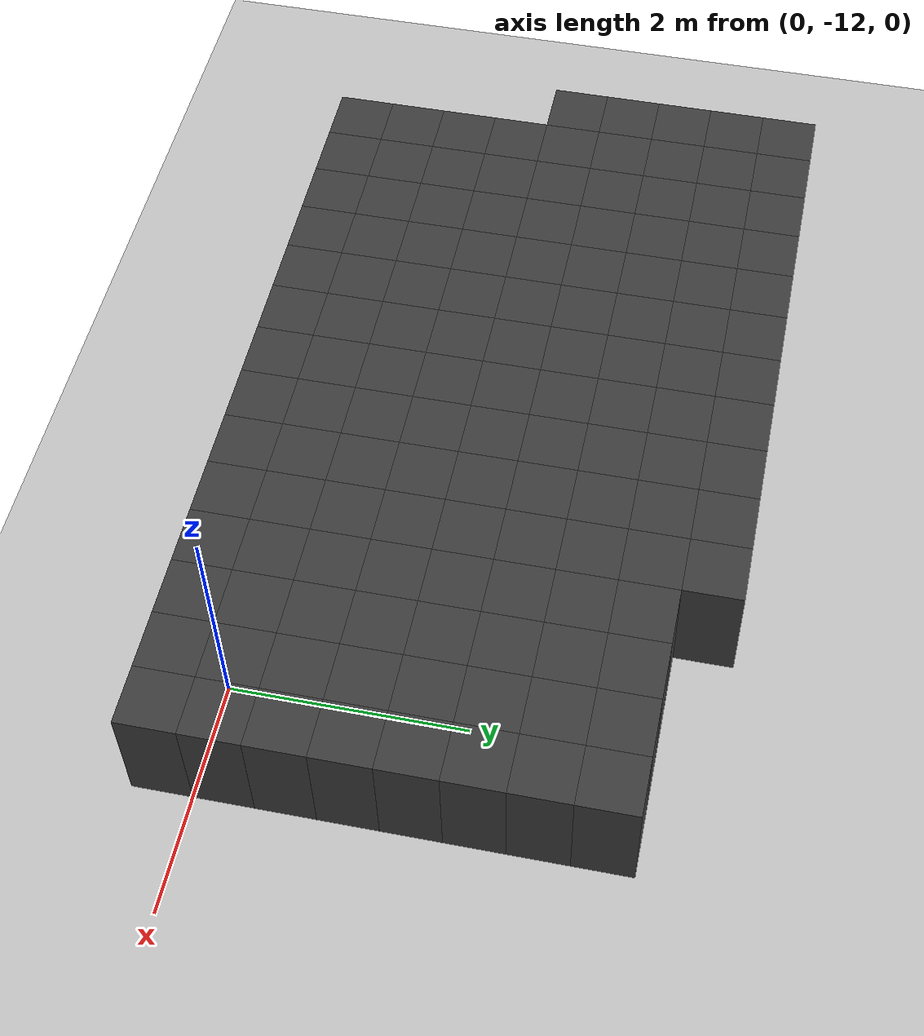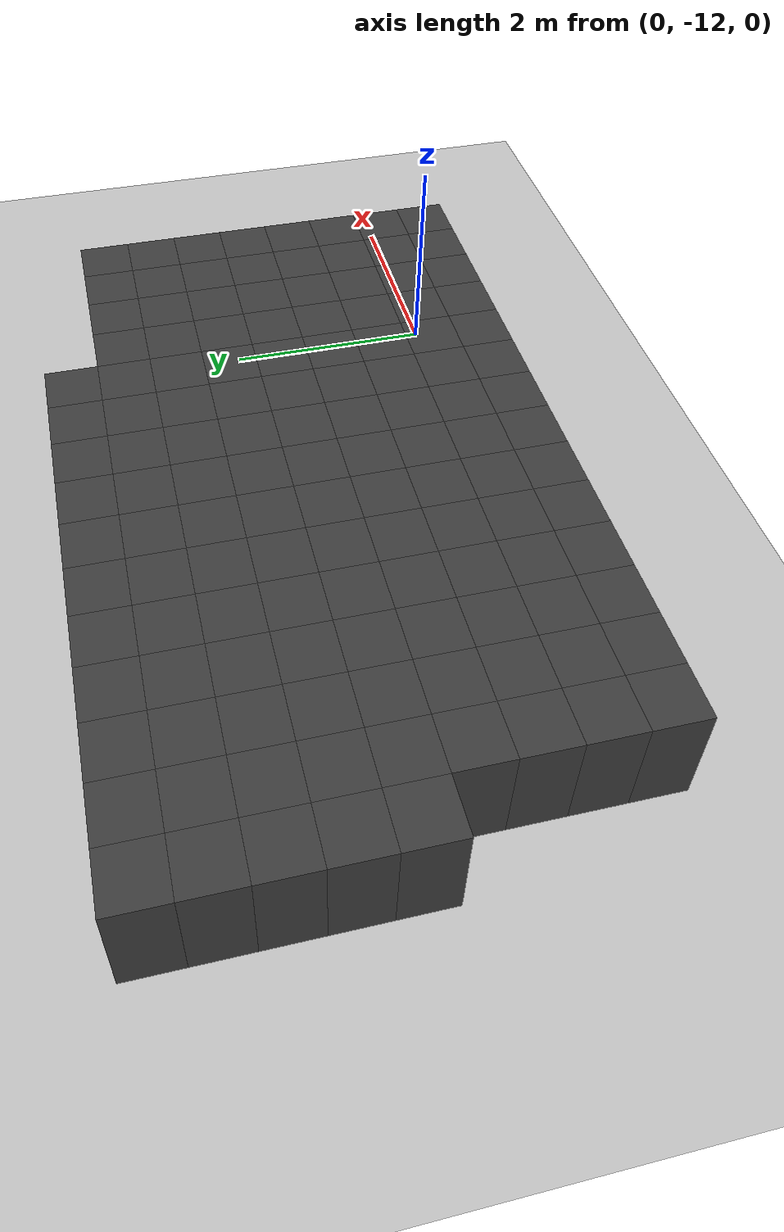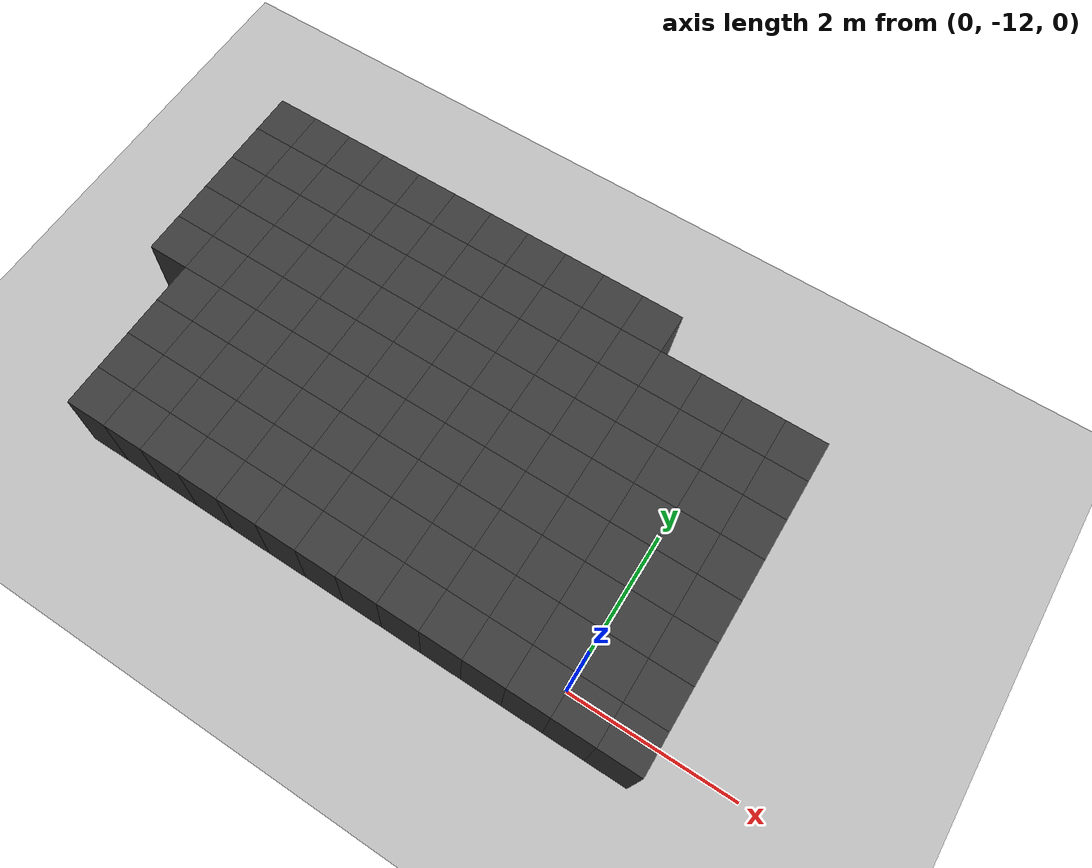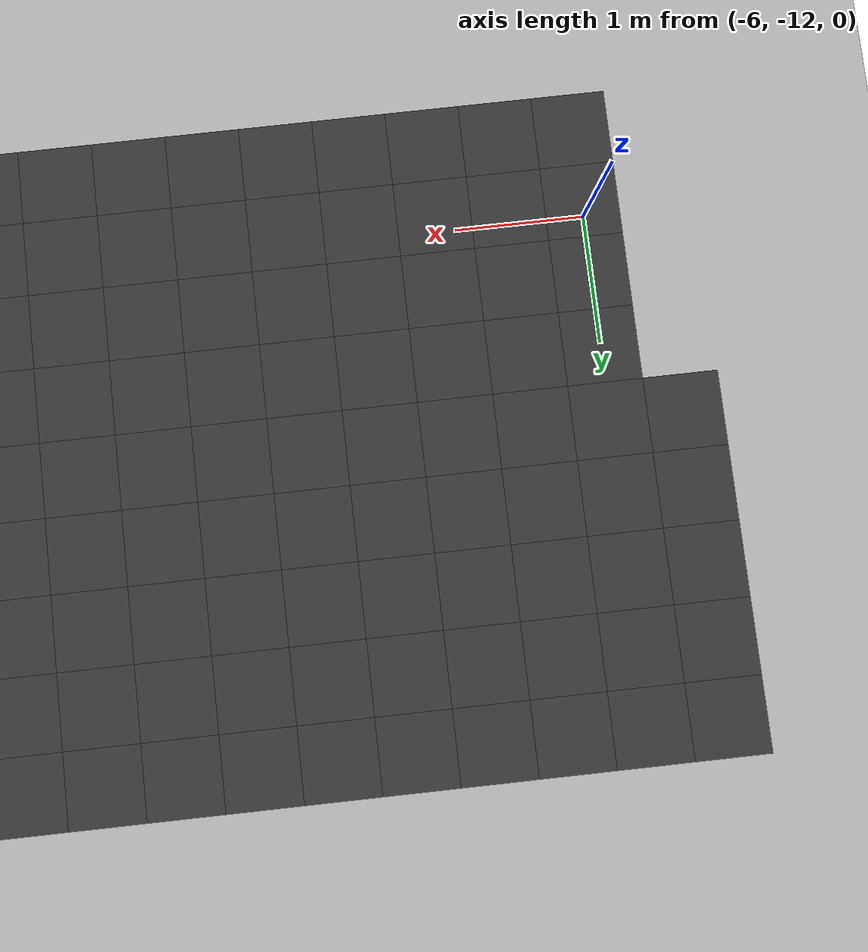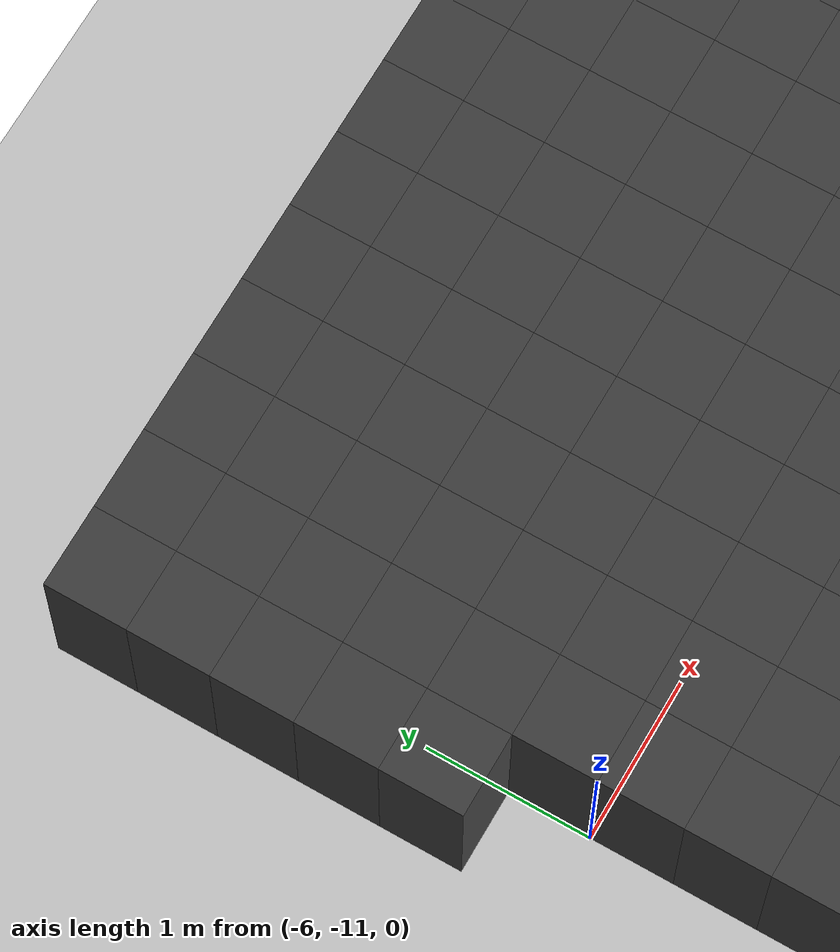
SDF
<sdf version="1.7">
 <world name="map_12356">
  <model name="ground_plane">
   <static>true</static>
   <link name="link">
    <collision name="collision">
     <geometry><plane><normal>0 0 1</normal><size>200 200</size></plane></geometry>
    </collision>
    <visual name="visual">
     <geometry><plane><normal>0 0 1</normal><size>200 200</size></plane></geometry>
     <material><ambient>0.8 0.8 0.8 1</ambient><diffuse>0.8 0.8 0.8 1</diffuse></material>
    </visual>
   </link>
  </model>
  <model name="maze_environment">
   <static>true</static>
   <link name="wall_1620">
    <pose>-6.250 -8.250 0.500 0 0 0</pose>
    <collision name="col"><geometry><box><size>0.5 0.5 1.0</size></box></geometry></collision>
    <visual name="vis">
     <geometry><box><size>0.5 0.5 1.0</size></box></geometry>
     <material><ambient>0.15 0.15 0.15 1</ambient><diffuse>0.25 0.25 0.25 1</diffuse></material>
    </visual>
   </link>
   <link name="wall_1621">
    <pose>-5.750 -8.250 0.500 0 0 0</pose>
    <collision name="col"><geometry><box><size>0.5 0.5 1.0</size></box></geometry></collision>
    <visual name="vis">
     <geometry><box><size>0.5 0.5 1.0</size></box></geometry>
     <material><ambient>0.15 0.15 0.15 1</ambient><diffuse>0.25 0.25 0.25 1</diffuse></material>
    </visual>
   </link>
   <link name="wall_1622">
    <pose>-5.250 -8.250 0.500 0 0 0</pose>
    <collision name="col"><geometry><box><size>0.5 0.5 1.0</size></box></geometry></collision>
    <visual name="vis">
     <geometry><box><size>0.5 0.5 1.0</size></box></geometry>
     <material><ambient>0.15 0.15 0.15 1</ambient><diffuse>0.25 0.25 0.25 1</diffuse></material>
    </visual>
   </link>
   <link name="wall_1623">
    <pose>-4.750 -8.250 0.500 0 0 0</pose>
    <collision name="col"><geometry><box><size>0.5 0.5 1.0</size></box></geometry></collision>
    <visual name="vis">
     <geometry><box><size>0.5 0.5 1.0</size></box></geometry>
     <material><ambient>0.15 0.15 0.15 1</ambient><diffuse>0.25 0.25 0.25 1</diffuse></material>
    </visual>
   </link>
   <link name="wall_1624">
    <pose>-4.250 -8.250 0.500 0 0 0</pose>
    <collision name="col"><geometry><box><size>0.5 0.5 1.0</size></box></geometry></collision>
    <visual name="vis">
     <geometry><box><size>0.5 0.5 1.0</size></box></geometry>
     <material><ambient>0.15 0.15 0.15 1</ambient><diffuse>0.25 0.25 0.25 1</diffuse></material>
    </visual>
   </link>
   <link name="wall_1625">
    <pose>-3.750 -8.250 0.500 0 0 0</pose>
    <collision name="col"><geometry><box><size>0.5 0.5 1.0</size></box></geometry></collision>
    <visual name="vis">
     <geometry><box><size>0.5 0.5 1.0</size></box></geometry>
     <material><ambient>0.15 0.15 0.15 1</ambient><diffuse>0.25 0.25 0.25 1</diffuse></material>
    </visual>
   </link>
   <link name="wall_1626">
    <pose>-3.250 -8.250 0.500 0 0 0</pose>
    <collision name="col"><geometry><box><size>0.5 0.5 1.0</size></box></geometry></collision>
    <visual name="vis">
     <geometry><box><size>0.5 0.5 1.0</size></box></geometry>
     <material><ambient>0.15 0.15 0.15 1</ambient><diffuse>0.25 0.25 0.25 1</diffuse></material>
    </visual>
   </link>
   <link name="wall_1627">
    <pose>-2.750 -8.250 0.500 0 0 0</pose>
    <collision name="col"><geometry><box><size>0.5 0.5 1.0</size></box></geometry></collision>
    <visual name="vis">
     <geometry><box><size>0.5 0.5 1.0</size></box></geometry>
     <material><ambient>0.15 0.15 0.15 1</ambient><diffuse>0.25 0.25 0.25 1</diffuse></material>
    </visual>
   </link>
   <link name="wall_1628">
    <pose>-2.250 -8.250 0.500 0 0 0</pose>
    <collision name="col"><geometry><box><size>0.5 0.5 1.0</size></box></geometry></collision>
    <visual name="vis">
     <geometry><box><size>0.5 0.5 1.0</size></box></geometry>
     <material><ambient>0.15 0.15 0.15 1</ambient><diffuse>0.25 0.25 0.25 1</diffuse></material>
    </visual>
   </link>
   <link name="wall_1629">
    <pose>-1.750 -8.250 0.500 0 0 0</pose>
    <collision name="col"><geometry><box><size>0.5 0.5 1.0</size></box></geometry></collision>
    <visual name="vis">
     <geometry><box><size>0.5 0.5 1.0</size></box></geometry>
     <material><ambient>0.15 0.15 0.15 1</ambient><diffuse>0.25 0.25 0.25 1</diffuse></material>
    </visual>
   </link>
   <link name="wall_1630">
    <pose>-1.250 -8.250 0.500 0 0 0</pose>
    <collision name="col"><geometry><box><size>0.5 0.5 1.0</size></box></geometry></collision>
    <visual name="vis">
     <geometry><box><size>0.5 0.5 1.0</size></box></geometry>
     <material><ambient>0.15 0.15 0.15 1</ambient><diffuse>0.25 0.25 0.25 1</diffuse></material>
    </visual>
   </link>
   <link name="wall_1669">
    <pose>-6.250 -8.750 0.500 0 0 0</pose>
    <collision name="col"><geometry><box><size>0.5 0.5 1.0</size></box></geometry></collision>
    <visual name="vis">
     <geometry><box><size>0.5 0.5 1.0</size></box></geometry>
     <material><ambient>0.15 0.15 0.15 1</ambient><diffuse>0.25 0.25 0.25 1</diffuse></material>
    </visual>
   </link>
   <link name="wall_1670">
    <pose>-5.750 -8.750 0.500 0 0 0</pose>
    <collision name="col"><geometry><box><size>0.5 0.5 1.0</size></box></geometry></collision>
    <visual name="vis">
     <geometry><box><size>0.5 0.5 1.0</size></box></geometry>
     <material><ambient>0.15 0.15 0.15 1</ambient><diffuse>0.25 0.25 0.25 1</diffuse></material>
    </visual>
   </link>
   <link name="wall_1671">
    <pose>-5.250 -8.750 0.500 0 0 0</pose>
    <collision name="col"><geometry><box><size>0.5 0.5 1.0</size></box></geometry></collision>
    <visual name="vis">
     <geometry><box><size>0.5 0.5 1.0</size></box></geometry>
     <material><ambient>0.15 0.15 0.15 1</ambient><diffuse>0.25 0.25 0.25 1</diffuse></material>
    </visual>
   </link>
   <link name="wall_1672">
    <pose>-4.750 -8.750 0.500 0 0 0</pose>
    <collision name="col"><geometry><box><size>0.5 0.5 1.0</size></box></geometry></collision>
    <visual name="vis">
     <geometry><box><size>0.5 0.5 1.0</size></box></geometry>
     <material><ambient>0.15 0.15 0.15 1</ambient><diffuse>0.25 0.25 0.25 1</diffuse></material>
    </visual>
   </link>
   <link name="wall_1673">
    <pose>-4.250 -8.750 0.500 0 0 0</pose>
    <collision name="col"><geometry><box><size>0.5 0.5 1.0</size></box></geometry></collision>
    <visual name="vis">
     <geometry><box><size>0.5 0.5 1.0</size></box></geometry>
     <material><ambient>0.15 0.15 0.15 1</ambient><diffuse>0.25 0.25 0.25 1</diffuse></material>
    </visual>
   </link>
   <link name="wall_1674">
    <pose>-3.750 -8.750 0.500 0 0 0</pose>
    <collision name="col"><geometry><box><size>0.5 0.5 1.0</size></box></geometry></collision>
    <visual name="vis">
     <geometry><box><size>0.5 0.5 1.0</size></box></geometry>
     <material><ambient>0.15 0.15 0.15 1</ambient><diffuse>0.25 0.25 0.25 1</diffuse></material>
    </visual>
   </link>
   <link name="wall_1675">
    <pose>-3.250 -8.750 0.500 0 0 0</pose>
    <collision name="col"><geometry><box><size>0.5 0.5 1.0</size></box></geometry></collision>
    <visual name="vis">
     <geometry><box><size>0.5 0.5 1.0</size></box></geometry>
     <material><ambient>0.15 0.15 0.15 1</ambient><diffuse>0.25 0.25 0.25 1</diffuse></material>
    </visual>
   </link>
   <link name="wall_1676">
    <pose>-2.750 -8.750 0.500 0 0 0</pose>
    <collision name="col"><geometry><box><size>0.5 0.5 1.0</size></box></geometry></collision>
    <visual name="vis">
     <geometry><box><size>0.5 0.5 1.0</size></box></geometry>
     <material><ambient>0.15 0.15 0.15 1</ambient><diffuse>0.25 0.25 0.25 1</diffuse></material>
    </visual>
   </link>
   <link name="wall_1677">
    <pose>-2.250 -8.750 0.500 0 0 0</pose>
    <collision name="col"><geometry><box><size>0.5 0.5 1.0</size></box></geometry></collision>
    <visual name="vis">
     <geometry><box><size>0.5 0.5 1.0</size></box></geometry>
     <material><ambient>0.15 0.15 0.15 1</ambient><diffuse>0.25 0.25 0.25 1</diffuse></material>
    </visual>
   </link>
   <link name="wall_1678">
    <pose>-1.750 -8.750 0.500 0 0 0</pose>
    <collision name="col"><geometry><box><size>0.5 0.5 1.0</size></box></geometry></collision>
    <visual name="vis">
     <geometry><box><size>0.5 0.5 1.0</size></box></geometry>
     <material><ambient>0.15 0.15 0.15 1</ambient><diffuse>0.25 0.25 0.25 1</diffuse></material>
    </visual>
   </link>
   <link name="wall_1679">
    <pose>-1.250 -8.750 0.500 0 0 0</pose>
    <collision name="col"><geometry><box><size>0.5 0.5 1.0</size></box></geometry></collision>
    <visual name="vis">
     <geometry><box><size>0.5 0.5 1.0</size></box></geometry>
     <material><ambient>0.15 0.15 0.15 1</ambient><diffuse>0.25 0.25 0.25 1</diffuse></material>
    </visual>
   </link>
   <link name="wall_1680">
    <pose>-0.750 -8.750 0.500 0 0 0</pose>
    <collision name="col"><geometry><box><size>0.5 0.5 1.0</size></box></geometry></collision>
    <visual name="vis">
     <geometry><box><size>0.5 0.5 1.0</size></box></geometry>
     <material><ambient>0.15 0.15 0.15 1</ambient><diffuse>0.25 0.25 0.25 1</diffuse></material>
    </visual>
   </link>
   <link name="wall_1681">
    <pose>-0.250 -8.750 0.500 0 0 0</pose>
    <collision name="col"><geometry><box><size>0.5 0.5 1.0</size></box></geometry></collision>
    <visual name="vis">
     <geometry><box><size>0.5 0.5 1.0</size></box></geometry>
     <material><ambient>0.15 0.15 0.15 1</ambient><diffuse>0.25 0.25 0.25 1</diffuse></material>
    </visual>
   </link>
   <link name="wall_1682">
    <pose>0.250 -8.750 0.500 0 0 0</pose>
    <collision name="col"><geometry><box><size>0.5 0.5 1.0</size></box></geometry></collision>
    <visual name="vis">
     <geometry><box><size>0.5 0.5 1.0</size></box></geometry>
     <material><ambient>0.15 0.15 0.15 1</ambient><diffuse>0.25 0.25 0.25 1</diffuse></material>
    </visual>
   </link>
   <link name="wall_1683">
    <pose>0.750 -8.750 0.500 0 0 0</pose>
    <collision name="col"><geometry><box><size>0.5 0.5 1.0</size></box></geometry></collision>
    <visual name="vis">
     <geometry><box><size>0.5 0.5 1.0</size></box></geometry>
     <material><ambient>0.15 0.15 0.15 1</ambient><diffuse>0.25 0.25 0.25 1</diffuse></material>
    </visual>
   </link>
   <link name="wall_1718">
    <pose>-6.250 -9.250 0.500 0 0 0</pose>
    <collision name="col"><geometry><box><size>0.5 0.5 1.0</size></box></geometry></collision>
    <visual name="vis">
     <geometry><box><size>0.5 0.5 1.0</size></box></geometry>
     <material><ambient>0.15 0.15 0.15 1</ambient><diffuse>0.25 0.25 0.25 1</diffuse></material>
    </visual>
   </link>
   <link name="wall_1719">
    <pose>-5.750 -9.250 0.500 0 0 0</pose>
    <collision name="col"><geometry><box><size>0.5 0.5 1.0</size></box></geometry></collision>
    <visual name="vis">
     <geometry><box><size>0.5 0.5 1.0</size></box></geometry>
     <material><ambient>0.15 0.15 0.15 1</ambient><diffuse>0.25 0.25 0.25 1</diffuse></material>
    </visual>
   </link>
   <link name="wall_1720">
    <pose>-5.250 -9.250 0.500 0 0 0</pose>
    <collision name="col"><geometry><box><size>0.5 0.5 1.0</size></box></geometry></collision>
    <visual name="vis">
     <geometry><box><size>0.5 0.5 1.0</size></box></geometry>
     <material><ambient>0.15 0.15 0.15 1</ambient><diffuse>0.25 0.25 0.25 1</diffuse></material>
    </visual>
   </link>
   <link name="wall_1721">
    <pose>-4.750 -9.250 0.500 0 0 0</pose>
    <collision name="col"><geometry><box><size>0.5 0.5 1.0</size></box></geometry></collision>
    <visual name="vis">
     <geometry><box><size>0.5 0.5 1.0</size></box></geometry>
     <material><ambient>0.15 0.15 0.15 1</ambient><diffuse>0.25 0.25 0.25 1</diffuse></material>
    </visual>
   </link>
   <link name="wall_1722">
    <pose>-4.250 -9.250 0.500 0 0 0</pose>
    <collision name="col"><geometry><box><size>0.5 0.5 1.0</size></box></geometry></collision>
    <visual name="vis">
     <geometry><box><size>0.5 0.5 1.0</size></box></geometry>
     <material><ambient>0.15 0.15 0.15 1</ambient><diffuse>0.25 0.25 0.25 1</diffuse></material>
    </visual>
   </link>
   <link name="wall_1723">
    <pose>-3.750 -9.250 0.500 0 0 0</pose>
    <collision name="col"><geometry><box><size>0.5 0.5 1.0</size></box></geometry></collision>
    <visual name="vis">
     <geometry><box><size>0.5 0.5 1.0</size></box></geometry>
     <material><ambient>0.15 0.15 0.15 1</ambient><diffuse>0.25 0.25 0.25 1</diffuse></material>
    </visual>
   </link>
   <link name="wall_1724">
    <pose>-3.250 -9.250 0.500 0 0 0</pose>
    <collision name="col"><geometry><box><size>0.5 0.5 1.0</size></box></geometry></collision>
    <visual name="vis">
     <geometry><box><size>0.5 0.5 1.0</size></box></geometry>
     <material><ambient>0.15 0.15 0.15 1</ambient><diffuse>0.25 0.25 0.25 1</diffuse></material>
    </visual>
   </link>
   <link name="wall_1725">
    <pose>-2.750 -9.250 0.500 0 0 0</pose>
    <collision name="col"><geometry><box><size>0.5 0.5 1.0</size></box></geometry></collision>
    <visual name="vis">
     <geometry><box><size>0.5 0.5 1.0</size></box></geometry>
     <material><ambient>0.15 0.15 0.15 1</ambient><diffuse>0.25 0.25 0.25 1</diffuse></material>
    </visual>
   </link>
   <link name="wall_1726">
    <pose>-2.250 -9.250 0.500 0 0 0</pose>
    <collision name="col"><geometry><box><size>0.5 0.5 1.0</size></box></geometry></collision>
    <visual name="vis">
     <geometry><box><size>0.5 0.5 1.0</size></box></geometry>
     <material><ambient>0.15 0.15 0.15 1</ambient><diffuse>0.25 0.25 0.25 1</diffuse></material>
    </visual>
   </link>
   <link name="wall_1727">
    <pose>-1.750 -9.250 0.500 0 0 0</pose>
    <collision name="col"><geometry><box><size>0.5 0.5 1.0</size></box></geometry></collision>
    <visual name="vis">
     <geometry><box><size>0.5 0.5 1.0</size></box></geometry>
     <material><ambient>0.15 0.15 0.15 1</ambient><diffuse>0.25 0.25 0.25 1</diffuse></material>
    </visual>
   </link>
   <link name="wall_1728">
    <pose>-1.250 -9.250 0.500 0 0 0</pose>
    <collision name="col"><geometry><box><size>0.5 0.5 1.0</size></box></geometry></collision>
    <visual name="vis">
     <geometry><box><size>0.5 0.5 1.0</size></box></geometry>
     <material><ambient>0.15 0.15 0.15 1</ambient><diffuse>0.25 0.25 0.25 1</diffuse></material>
    </visual>
   </link>
   <link name="wall_1729">
    <pose>-0.750 -9.250 0.500 0 0 0</pose>
    <collision name="col"><geometry><box><size>0.5 0.5 1.0</size></box></geometry></collision>
    <visual name="vis">
     <geometry><box><size>0.5 0.5 1.0</size></box></geometry>
     <material><ambient>0.15 0.15 0.15 1</ambient><diffuse>0.25 0.25 0.25 1</diffuse></material>
    </visual>
   </link>
   <link name="wall_1730">
    <pose>-0.250 -9.250 0.500 0 0 0</pose>
    <collision name="col"><geometry><box><size>0.5 0.5 1.0</size></box></geometry></collision>
    <visual name="vis">
     <geometry><box><size>0.5 0.5 1.0</size></box></geometry>
     <material><ambient>0.15 0.15 0.15 1</ambient><diffuse>0.25 0.25 0.25 1</diffuse></material>
    </visual>
   </link>
   <link name="wall_1731">
    <pose>0.250 -9.250 0.500 0 0 0</pose>
    <collision name="col"><geometry><box><size>0.5 0.5 1.0</size></box></geometry></collision>
    <visual name="vis">
     <geometry><box><size>0.5 0.5 1.0</size></box></geometry>
     <material><ambient>0.15 0.15 0.15 1</ambient><diffuse>0.25 0.25 0.25 1</diffuse></material>
    </visual>
   </link>
   <link name="wall_1732">
    <pose>0.750 -9.250 0.500 0 0 0</pose>
    <collision name="col"><geometry><box><size>0.5 0.5 1.0</size></box></geometry></collision>
    <visual name="vis">
     <geometry><box><size>0.5 0.5 1.0</size></box></geometry>
     <material><ambient>0.15 0.15 0.15 1</ambient><diffuse>0.25 0.25 0.25 1</diffuse></material>
    </visual>
   </link>
   <link name="wall_1767">
    <pose>-6.250 -9.750 0.500 0 0 0</pose>
    <collision name="col"><geometry><box><size>0.5 0.5 1.0</size></box></geometry></collision>
    <visual name="vis">
     <geometry><box><size>0.5 0.5 1.0</size></box></geometry>
     <material><ambient>0.15 0.15 0.15 1</ambient><diffuse>0.25 0.25 0.25 1</diffuse></material>
    </visual>
   </link>
   <link name="wall_1768">
    <pose>-5.750 -9.750 0.500 0 0 0</pose>
    <collision name="col"><geometry><box><size>0.5 0.5 1.0</size></box></geometry></collision>
    <visual name="vis">
     <geometry><box><size>0.5 0.5 1.0</size></box></geometry>
     <material><ambient>0.15 0.15 0.15 1</ambient><diffuse>0.25 0.25 0.25 1</diffuse></material>
    </visual>
   </link>
   <link name="wall_1769">
    <pose>-5.250 -9.750 0.500 0 0 0</pose>
    <collision name="col"><geometry><box><size>0.5 0.5 1.0</size></box></geometry></collision>
    <visual name="vis">
     <geometry><box><size>0.5 0.5 1.0</size></box></geometry>
     <material><ambient>0.15 0.15 0.15 1</ambient><diffuse>0.25 0.25 0.25 1</diffuse></material>
    </visual>
   </link>
   <link name="wall_1770">
    <pose>-4.750 -9.750 0.500 0 0 0</pose>
    <collision name="col"><geometry><box><size>0.5 0.5 1.0</size></box></geometry></collision>
    <visual name="vis">
     <geometry><box><size>0.5 0.5 1.0</size></box></geometry>
     <material><ambient>0.15 0.15 0.15 1</ambient><diffuse>0.25 0.25 0.25 1</diffuse></material>
    </visual>
   </link>
   <link name="wall_1771">
    <pose>-4.250 -9.750 0.500 0 0 0</pose>
    <collision name="col"><geometry><box><size>0.5 0.5 1.0</size></box></geometry></collision>
    <visual name="vis">
     <geometry><box><size>0.5 0.5 1.0</size></box></geometry>
     <material><ambient>0.15 0.15 0.15 1</ambient><diffuse>0.25 0.25 0.25 1</diffuse></material>
    </visual>
   </link>
   <link name="wall_1772">
    <pose>-3.750 -9.750 0.500 0 0 0</pose>
    <collision name="col"><geometry><box><size>0.5 0.5 1.0</size></box></geometry></collision>
    <visual name="vis">
     <geometry><box><size>0.5 0.5 1.0</size></box></geometry>
     <material><ambient>0.15 0.15 0.15 1</ambient><diffuse>0.25 0.25 0.25 1</diffuse></material>
    </visual>
   </link>
   <link name="wall_1773">
    <pose>-3.250 -9.750 0.500 0 0 0</pose>
    <collision name="col"><geometry><box><size>0.5 0.5 1.0</size></box></geometry></collision>
    <visual name="vis">
     <geometry><box><size>0.5 0.5 1.0</size></box></geometry>
     <material><ambient>0.15 0.15 0.15 1</ambient><diffuse>0.25 0.25 0.25 1</diffuse></material>
    </visual>
   </link>
   <link name="wall_1774">
    <pose>-2.750 -9.750 0.500 0 0 0</pose>
    <collision name="col"><geometry><box><size>0.5 0.5 1.0</size></box></geometry></collision>
    <visual name="vis">
     <geometry><box><size>0.5 0.5 1.0</size></box></geometry>
     <material><ambient>0.15 0.15 0.15 1</ambient><diffuse>0.25 0.25 0.25 1</diffuse></material>
    </visual>
   </link>
   <link name="wall_1775">
    <pose>-2.250 -9.750 0.500 0 0 0</pose>
    <collision name="col"><geometry><box><size>0.5 0.5 1.0</size></box></geometry></collision>
    <visual name="vis">
     <geometry><box><size>0.5 0.5 1.0</size></box></geometry>
     <material><ambient>0.15 0.15 0.15 1</ambient><diffuse>0.25 0.25 0.25 1</diffuse></material>
    </visual>
   </link>
   <link name="wall_1776">
    <pose>-1.750 -9.750 0.500 0 0 0</pose>
    <collision name="col"><geometry><box><size>0.5 0.5 1.0</size></box></geometry></collision>
    <visual name="vis">
     <geometry><box><size>0.5 0.5 1.0</size></box></geometry>
     <material><ambient>0.15 0.15 0.15 1</ambient><diffuse>0.25 0.25 0.25 1</diffuse></material>
    </visual>
   </link>
   <link name="wall_1777">
    <pose>-1.250 -9.750 0.500 0 0 0</pose>
    <collision name="col"><geometry><box><size>0.5 0.5 1.0</size></box></geometry></collision>
    <visual name="vis">
     <geometry><box><size>0.5 0.5 1.0</size></box></geometry>
     <material><ambient>0.15 0.15 0.15 1</ambient><diffuse>0.25 0.25 0.25 1</diffuse></material>
    </visual>
   </link>
   <link name="wall_1778">
    <pose>-0.750 -9.750 0.500 0 0 0</pose>
    <collision name="col"><geometry><box><size>0.5 0.5 1.0</size></box></geometry></collision>
    <visual name="vis">
     <geometry><box><size>0.5 0.5 1.0</size></box></geometry>
     <material><ambient>0.15 0.15 0.15 1</ambient><diffuse>0.25 0.25 0.25 1</diffuse></material>
    </visual>
   </link>
   <link name="wall_1779">
    <pose>-0.250 -9.750 0.500 0 0 0</pose>
    <collision name="col"><geometry><box><size>0.5 0.5 1.0</size></box></geometry></collision>
    <visual name="vis">
     <geometry><box><size>0.5 0.5 1.0</size></box></geometry>
     <material><ambient>0.15 0.15 0.15 1</ambient><diffuse>0.25 0.25 0.25 1</diffuse></material>
    </visual>
   </link>
   <link name="wall_1780">
    <pose>0.250 -9.750 0.500 0 0 0</pose>
    <collision name="col"><geometry><box><size>0.5 0.5 1.0</size></box></geometry></collision>
    <visual name="vis">
     <geometry><box><size>0.5 0.5 1.0</size></box></geometry>
     <material><ambient>0.15 0.15 0.15 1</ambient><diffuse>0.25 0.25 0.25 1</diffuse></material>
    </visual>
   </link>
   <link name="wall_1781">
    <pose>0.750 -9.750 0.500 0 0 0</pose>
    <collision name="col"><geometry><box><size>0.5 0.5 1.0</size></box></geometry></collision>
    <visual name="vis">
     <geometry><box><size>0.5 0.5 1.0</size></box></geometry>
     <material><ambient>0.15 0.15 0.15 1</ambient><diffuse>0.25 0.25 0.25 1</diffuse></material>
    </visual>
   </link>
   <link name="wall_1816">
    <pose>-6.250 -10.250 0.500 0 0 0</pose>
    <collision name="col"><geometry><box><size>0.5 0.5 1.0</size></box></geometry></collision>
    <visual name="vis">
     <geometry><box><size>0.5 0.5 1.0</size></box></geometry>
     <material><ambient>0.15 0.15 0.15 1</ambient><diffuse>0.25 0.25 0.25 1</diffuse></material>
    </visual>
   </link>
   <link name="wall_1817">
    <pose>-5.750 -10.250 0.500 0 0 0</pose>
    <collision name="col"><geometry><box><size>0.5 0.5 1.0</size></box></geometry></collision>
    <visual name="vis">
     <geometry><box><size>0.5 0.5 1.0</size></box></geometry>
     <material><ambient>0.15 0.15 0.15 1</ambient><diffuse>0.25 0.25 0.25 1</diffuse></material>
    </visual>
   </link>
   <link name="wall_1818">
    <pose>-5.250 -10.250 0.500 0 0 0</pose>
    <collision name="col"><geometry><box><size>0.5 0.5 1.0</size></box></geometry></collision>
    <visual name="vis">
     <geometry><box><size>0.5 0.5 1.0</size></box></geometry>
     <material><ambient>0.15 0.15 0.15 1</ambient><diffuse>0.25 0.25 0.25 1</diffuse></material>
    </visual>
   </link>
   <link name="wall_1819">
    <pose>-4.750 -10.250 0.500 0 0 0</pose>
    <collision name="col"><geometry><box><size>0.5 0.5 1.0</size></box></geometry></collision>
    <visual name="vis">
     <geometry><box><size>0.5 0.5 1.0</size></box></geometry>
     <material><ambient>0.15 0.15 0.15 1</ambient><diffuse>0.25 0.25 0.25 1</diffuse></material>
    </visual>
   </link>
   <link name="wall_1820">
    <pose>-4.250 -10.250 0.500 0 0 0</pose>
    <collision name="col"><geometry><box><size>0.5 0.5 1.0</size></box></geometry></collision>
    <visual name="vis">
     <geometry><box><size>0.5 0.5 1.0</size></box></geometry>
     <material><ambient>0.15 0.15 0.15 1</ambient><diffuse>0.25 0.25 0.25 1</diffuse></material>
    </visual>
   </link>
   <link name="wall_1821">
    <pose>-3.750 -10.250 0.500 0 0 0</pose>
    <collision name="col"><geometry><box><size>0.5 0.5 1.0</size></box></geometry></collision>
    <visual name="vis">
     <geometry><box><size>0.5 0.5 1.0</size></box></geometry>
     <material><ambient>0.15 0.15 0.15 1</ambient><diffuse>0.25 0.25 0.25 1</diffuse></material>
    </visual>
   </link>
   <link name="wall_1822">
    <pose>-3.250 -10.250 0.500 0 0 0</pose>
    <collision name="col"><geometry><box><size>0.5 0.5 1.0</size></box></geometry></collision>
    <visual name="vis">
     <geometry><box><size>0.5 0.5 1.0</size></box></geometry>
     <material><ambient>0.15 0.15 0.15 1</ambient><diffuse>0.25 0.25 0.25 1</diffuse></material>
    </visual>
   </link>
   <link name="wall_1823">
    <pose>-2.750 -10.250 0.500 0 0 0</pose>
    <collision name="col"><geometry><box><size>0.5 0.5 1.0</size></box></geometry></collision>
    <visual name="vis">
     <geometry><box><size>0.5 0.5 1.0</size></box></geometry>
     <material><ambient>0.15 0.15 0.15 1</ambient><diffuse>0.25 0.25 0.25 1</diffuse></material>
    </visual>
   </link>
   <link name="wall_1824">
    <pose>-2.250 -10.250 0.500 0 0 0</pose>
    <collision name="col"><geometry><box><size>0.5 0.5 1.0</size></box></geometry></collision>
    <visual name="vis">
     <geometry><box><size>0.5 0.5 1.0</size></box></geometry>
     <material><ambient>0.15 0.15 0.15 1</ambient><diffuse>0.25 0.25 0.25 1</diffuse></material>
    </visual>
   </link>
   <link name="wall_1825">
    <pose>-1.750 -10.250 0.500 0 0 0</pose>
    <collision name="col"><geometry><box><size>0.5 0.5 1.0</size></box></geometry></collision>
    <visual name="vis">
     <geometry><box><size>0.5 0.5 1.0</size></box></geometry>
     <material><ambient>0.15 0.15 0.15 1</ambient><diffuse>0.25 0.25 0.25 1</diffuse></material>
    </visual>
   </link>
   <link name="wall_1826">
    <pose>-1.250 -10.250 0.500 0 0 0</pose>
    <collision name="col"><geometry><box><size>0.5 0.5 1.0</size></box></geometry></collision>
    <visual name="vis">
     <geometry><box><size>0.5 0.5 1.0</size></box></geometry>
     <material><ambient>0.15 0.15 0.15 1</ambient><diffuse>0.25 0.25 0.25 1</diffuse></material>
    </visual>
   </link>
   <link name="wall_1827">
    <pose>-0.750 -10.250 0.500 0 0 0</pose>
    <collision name="col"><geometry><box><size>0.5 0.5 1.0</size></box></geometry></collision>
    <visual name="vis">
     <geometry><box><size>0.5 0.5 1.0</size></box></geometry>
     <material><ambient>0.15 0.15 0.15 1</ambient><diffuse>0.25 0.25 0.25 1</diffuse></material>
    </visual>
   </link>
   <link name="wall_1828">
    <pose>-0.250 -10.250 0.500 0 0 0</pose>
    <collision name="col"><geometry><box><size>0.5 0.5 1.0</size></box></geometry></collision>
    <visual name="vis">
     <geometry><box><size>0.5 0.5 1.0</size></box></geometry>
     <material><ambient>0.15 0.15 0.15 1</ambient><diffuse>0.25 0.25 0.25 1</diffuse></material>
    </visual>
   </link>
   <link name="wall_1829">
    <pose>0.250 -10.250 0.500 0 0 0</pose>
    <collision name="col"><geometry><box><size>0.5 0.5 1.0</size></box></geometry></collision>
    <visual name="vis">
     <geometry><box><size>0.5 0.5 1.0</size></box></geometry>
     <material><ambient>0.15 0.15 0.15 1</ambient><diffuse>0.25 0.25 0.25 1</diffuse></material>
    </visual>
   </link>
   <link name="wall_1830">
    <pose>0.750 -10.250 0.500 0 0 0</pose>
    <collision name="col"><geometry><box><size>0.5 0.5 1.0</size></box></geometry></collision>
    <visual name="vis">
     <geometry><box><size>0.5 0.5 1.0</size></box></geometry>
     <material><ambient>0.15 0.15 0.15 1</ambient><diffuse>0.25 0.25 0.25 1</diffuse></material>
    </visual>
   </link>
   <link name="wall_1866">
    <pose>-5.750 -10.750 0.500 0 0 0</pose>
    <collision name="col"><geometry><box><size>0.5 0.5 1.0</size></box></geometry></collision>
    <visual name="vis">
     <geometry><box><size>0.5 0.5 1.0</size></box></geometry>
     <material><ambient>0.15 0.15 0.15 1</ambient><diffuse>0.25 0.25 0.25 1</diffuse></material>
    </visual>
   </link>
   <link name="wall_1867">
    <pose>-5.250 -10.750 0.500 0 0 0</pose>
    <collision name="col"><geometry><box><size>0.5 0.5 1.0</size></box></geometry></collision>
    <visual name="vis">
     <geometry><box><size>0.5 0.5 1.0</size></box></geometry>
     <material><ambient>0.15 0.15 0.15 1</ambient><diffuse>0.25 0.25 0.25 1</diffuse></material>
    </visual>
   </link>
   <link name="wall_1868">
    <pose>-4.750 -10.750 0.500 0 0 0</pose>
    <collision name="col"><geometry><box><size>0.5 0.5 1.0</size></box></geometry></collision>
    <visual name="vis">
     <geometry><box><size>0.5 0.5 1.0</size></box></geometry>
     <material><ambient>0.15 0.15 0.15 1</ambient><diffuse>0.25 0.25 0.25 1</diffuse></material>
    </visual>
   </link>
   <link name="wall_1869">
    <pose>-4.250 -10.750 0.500 0 0 0</pose>
    <collision name="col"><geometry><box><size>0.5 0.5 1.0</size></box></geometry></collision>
    <visual name="vis">
     <geometry><box><size>0.5 0.5 1.0</size></box></geometry>
     <material><ambient>0.15 0.15 0.15 1</ambient><diffuse>0.25 0.25 0.25 1</diffuse></material>
    </visual>
   </link>
   <link name="wall_1870">
    <pose>-3.750 -10.750 0.500 0 0 0</pose>
    <collision name="col"><geometry><box><size>0.5 0.5 1.0</size></box></geometry></collision>
    <visual name="vis">
     <geometry><box><size>0.5 0.5 1.0</size></box></geometry>
     <material><ambient>0.15 0.15 0.15 1</ambient><diffuse>0.25 0.25 0.25 1</diffuse></material>
    </visual>
   </link>
   <link name="wall_1871">
    <pose>-3.250 -10.750 0.500 0 0 0</pose>
    <collision name="col"><geometry><box><size>0.5 0.5 1.0</size></box></geometry></collision>
    <visual name="vis">
     <geometry><box><size>0.5 0.5 1.0</size></box></geometry>
     <material><ambient>0.15 0.15 0.15 1</ambient><diffuse>0.25 0.25 0.25 1</diffuse></material>
    </visual>
   </link>
   <link name="wall_1872">
    <pose>-2.750 -10.750 0.500 0 0 0</pose>
    <collision name="col"><geometry><box><size>0.5 0.5 1.0</size></box></geometry></collision>
    <visual name="vis">
     <geometry><box><size>0.5 0.5 1.0</size></box></geometry>
     <material><ambient>0.15 0.15 0.15 1</ambient><diffuse>0.25 0.25 0.25 1</diffuse></material>
    </visual>
   </link>
   <link name="wall_1873">
    <pose>-2.250 -10.750 0.500 0 0 0</pose>
    <collision name="col"><geometry><box><size>0.5 0.5 1.0</size></box></geometry></collision>
    <visual name="vis">
     <geometry><box><size>0.5 0.5 1.0</size></box></geometry>
     <material><ambient>0.15 0.15 0.15 1</ambient><diffuse>0.25 0.25 0.25 1</diffuse></material>
    </visual>
   </link>
   <link name="wall_1874">
    <pose>-1.750 -10.750 0.500 0 0 0</pose>
    <collision name="col"><geometry><box><size>0.5 0.5 1.0</size></box></geometry></collision>
    <visual name="vis">
     <geometry><box><size>0.5 0.5 1.0</size></box></geometry>
     <material><ambient>0.15 0.15 0.15 1</ambient><diffuse>0.25 0.25 0.25 1</diffuse></material>
    </visual>
   </link>
   <link name="wall_1875">
    <pose>-1.250 -10.750 0.500 0 0 0</pose>
    <collision name="col"><geometry><box><size>0.5 0.5 1.0</size></box></geometry></collision>
    <visual name="vis">
     <geometry><box><size>0.5 0.5 1.0</size></box></geometry>
     <material><ambient>0.15 0.15 0.15 1</ambient><diffuse>0.25 0.25 0.25 1</diffuse></material>
    </visual>
   </link>
   <link name="wall_1876">
    <pose>-0.750 -10.750 0.500 0 0 0</pose>
    <collision name="col"><geometry><box><size>0.5 0.5 1.0</size></box></geometry></collision>
    <visual name="vis">
     <geometry><box><size>0.5 0.5 1.0</size></box></geometry>
     <material><ambient>0.15 0.15 0.15 1</ambient><diffuse>0.25 0.25 0.25 1</diffuse></material>
    </visual>
   </link>
   <link name="wall_1877">
    <pose>-0.250 -10.750 0.500 0 0 0</pose>
    <collision name="col"><geometry><box><size>0.5 0.5 1.0</size></box></geometry></collision>
    <visual name="vis">
     <geometry><box><size>0.5 0.5 1.0</size></box></geometry>
     <material><ambient>0.15 0.15 0.15 1</ambient><diffuse>0.25 0.25 0.25 1</diffuse></material>
    </visual>
   </link>
   <link name="wall_1878">
    <pose>0.250 -10.750 0.500 0 0 0</pose>
    <collision name="col"><geometry><box><size>0.5 0.5 1.0</size></box></geometry></collision>
    <visual name="vis">
     <geometry><box><size>0.5 0.5 1.0</size></box></geometry>
     <material><ambient>0.15 0.15 0.15 1</ambient><diffuse>0.25 0.25 0.25 1</diffuse></material>
    </visual>
   </link>
   <link name="wall_1879">
    <pose>0.750 -10.750 0.500 0 0 0</pose>
    <collision name="col"><geometry><box><size>0.5 0.5 1.0</size></box></geometry></collision>
    <visual name="vis">
     <geometry><box><size>0.5 0.5 1.0</size></box></geometry>
     <material><ambient>0.15 0.15 0.15 1</ambient><diffuse>0.25 0.25 0.25 1</diffuse></material>
    </visual>
   </link>
   <link name="wall_1912">
    <pose>-5.750 -11.250 0.500 0 0 0</pose>
    <collision name="col"><geometry><box><size>0.5 0.5 1.0</size></box></geometry></collision>
    <visual name="vis">
     <geometry><box><size>0.5 0.5 1.0</size></box></geometry>
     <material><ambient>0.15 0.15 0.15 1</ambient><diffuse>0.25 0.25 0.25 1</diffuse></material>
    </visual>
   </link>
   <link name="wall_1913">
    <pose>-5.250 -11.250 0.500 0 0 0</pose>
    <collision name="col"><geometry><box><size>0.5 0.5 1.0</size></box></geometry></collision>
    <visual name="vis">
     <geometry><box><size>0.5 0.5 1.0</size></box></geometry>
     <material><ambient>0.15 0.15 0.15 1</ambient><diffuse>0.25 0.25 0.25 1</diffuse></material>
    </visual>
   </link>
   <link name="wall_1914">
    <pose>-4.750 -11.250 0.500 0 0 0</pose>
    <collision name="col"><geometry><box><size>0.5 0.5 1.0</size></box></geometry></collision>
    <visual name="vis">
     <geometry><box><size>0.5 0.5 1.0</size></box></geometry>
     <material><ambient>0.15 0.15 0.15 1</ambient><diffuse>0.25 0.25 0.25 1</diffuse></material>
    </visual>
   </link>
   <link name="wall_1915">
    <pose>-4.250 -11.250 0.500 0 0 0</pose>
    <collision name="col"><geometry><box><size>0.5 0.5 1.0</size></box></geometry></collision>
    <visual name="vis">
     <geometry><box><size>0.5 0.5 1.0</size></box></geometry>
     <material><ambient>0.15 0.15 0.15 1</ambient><diffuse>0.25 0.25 0.25 1</diffuse></material>
    </visual>
   </link>
   <link name="wall_1916">
    <pose>-3.750 -11.250 0.500 0 0 0</pose>
    <collision name="col"><geometry><box><size>0.5 0.5 1.0</size></box></geometry></collision>
    <visual name="vis">
     <geometry><box><size>0.5 0.5 1.0</size></box></geometry>
     <material><ambient>0.15 0.15 0.15 1</ambient><diffuse>0.25 0.25 0.25 1</diffuse></material>
    </visual>
   </link>
   <link name="wall_1917">
    <pose>-3.250 -11.250 0.500 0 0 0</pose>
    <collision name="col"><geometry><box><size>0.5 0.5 1.0</size></box></geometry></collision>
    <visual name="vis">
     <geometry><box><size>0.5 0.5 1.0</size></box></geometry>
     <material><ambient>0.15 0.15 0.15 1</ambient><diffuse>0.25 0.25 0.25 1</diffuse></material>
    </visual>
   </link>
   <link name="wall_1918">
    <pose>-2.750 -11.250 0.500 0 0 0</pose>
    <collision name="col"><geometry><box><size>0.5 0.5 1.0</size></box></geometry></collision>
    <visual name="vis">
     <geometry><box><size>0.5 0.5 1.0</size></box></geometry>
     <material><ambient>0.15 0.15 0.15 1</ambient><diffuse>0.25 0.25 0.25 1</diffuse></material>
    </visual>
   </link>
   <link name="wall_1919">
    <pose>-2.250 -11.250 0.500 0 0 0</pose>
    <collision name="col"><geometry><box><size>0.5 0.5 1.0</size></box></geometry></collision>
    <visual name="vis">
     <geometry><box><size>0.5 0.5 1.0</size></box></geometry>
     <material><ambient>0.15 0.15 0.15 1</ambient><diffuse>0.25 0.25 0.25 1</diffuse></material>
    </visual>
   </link>
   <link name="wall_1920">
    <pose>-1.750 -11.250 0.500 0 0 0</pose>
    <collision name="col"><geometry><box><size>0.5 0.5 1.0</size></box></geometry></collision>
    <visual name="vis">
     <geometry><box><size>0.5 0.5 1.0</size></box></geometry>
     <material><ambient>0.15 0.15 0.15 1</ambient><diffuse>0.25 0.25 0.25 1</diffuse></material>
    </visual>
   </link>
   <link name="wall_1921">
    <pose>-1.250 -11.250 0.500 0 0 0</pose>
    <collision name="col"><geometry><box><size>0.5 0.5 1.0</size></box></geometry></collision>
    <visual name="vis">
     <geometry><box><size>0.5 0.5 1.0</size></box></geometry>
     <material><ambient>0.15 0.15 0.15 1</ambient><diffuse>0.25 0.25 0.25 1</diffuse></material>
    </visual>
   </link>
   <link name="wall_1922">
    <pose>-0.750 -11.250 0.500 0 0 0</pose>
    <collision name="col"><geometry><box><size>0.5 0.5 1.0</size></box></geometry></collision>
    <visual name="vis">
     <geometry><box><size>0.5 0.5 1.0</size></box></geometry>
     <material><ambient>0.15 0.15 0.15 1</ambient><diffuse>0.25 0.25 0.25 1</diffuse></material>
    </visual>
   </link>
   <link name="wall_1923">
    <pose>-0.250 -11.250 0.500 0 0 0</pose>
    <collision name="col"><geometry><box><size>0.5 0.5 1.0</size></box></geometry></collision>
    <visual name="vis">
     <geometry><box><size>0.5 0.5 1.0</size></box></geometry>
     <material><ambient>0.15 0.15 0.15 1</ambient><diffuse>0.25 0.25 0.25 1</diffuse></material>
    </visual>
   </link>
   <link name="wall_1924">
    <pose>0.250 -11.250 0.500 0 0 0</pose>
    <collision name="col"><geometry><box><size>0.5 0.5 1.0</size></box></geometry></collision>
    <visual name="vis">
     <geometry><box><size>0.5 0.5 1.0</size></box></geometry>
     <material><ambient>0.15 0.15 0.15 1</ambient><diffuse>0.25 0.25 0.25 1</diffuse></material>
    </visual>
   </link>
   <link name="wall_1925">
    <pose>0.750 -11.250 0.500 0 0 0</pose>
    <collision name="col"><geometry><box><size>0.5 0.5 1.0</size></box></geometry></collision>
    <visual name="vis">
     <geometry><box><size>0.5 0.5 1.0</size></box></geometry>
     <material><ambient>0.15 0.15 0.15 1</ambient><diffuse>0.25 0.25 0.25 1</diffuse></material>
    </visual>
   </link>
   <link name="wall_1958">
    <pose>-5.750 -11.750 0.500 0 0 0</pose>
    <collision name="col"><geometry><box><size>0.5 0.5 1.0</size></box></geometry></collision>
    <visual name="vis">
     <geometry><box><size>0.5 0.5 1.0</size></box></geometry>
     <material><ambient>0.15 0.15 0.15 1</ambient><diffuse>0.25 0.25 0.25 1</diffuse></material>
    </visual>
   </link>
   <link name="wall_1959">
    <pose>-5.250 -11.750 0.500 0 0 0</pose>
    <collision name="col"><geometry><box><size>0.5 0.5 1.0</size></box></geometry></collision>
    <visual name="vis">
     <geometry><box><size>0.5 0.5 1.0</size></box></geometry>
     <material><ambient>0.15 0.15 0.15 1</ambient><diffuse>0.25 0.25 0.25 1</diffuse></material>
    </visual>
   </link>
   <link name="wall_1960">
    <pose>-4.750 -11.750 0.500 0 0 0</pose>
    <collision name="col"><geometry><box><size>0.5 0.5 1.0</size></box></geometry></collision>
    <visual name="vis">
     <geometry><box><size>0.5 0.5 1.0</size></box></geometry>
     <material><ambient>0.15 0.15 0.15 1</ambient><diffuse>0.25 0.25 0.25 1</diffuse></material>
    </visual>
   </link>
   <link name="wall_1961">
    <pose>-4.250 -11.750 0.500 0 0 0</pose>
    <collision name="col"><geometry><box><size>0.5 0.5 1.0</size></box></geometry></collision>
    <visual name="vis">
     <geometry><box><size>0.5 0.5 1.0</size></box></geometry>
     <material><ambient>0.15 0.15 0.15 1</ambient><diffuse>0.25 0.25 0.25 1</diffuse></material>
    </visual>
   </link>
   <link name="wall_1962">
    <pose>-3.750 -11.750 0.500 0 0 0</pose>
    <collision name="col"><geometry><box><size>0.5 0.5 1.0</size></box></geometry></collision>
    <visual name="vis">
     <geometry><box><size>0.5 0.5 1.0</size></box></geometry>
     <material><ambient>0.15 0.15 0.15 1</ambient><diffuse>0.25 0.25 0.25 1</diffuse></material>
    </visual>
   </link>
   <link name="wall_1963">
    <pose>-3.250 -11.750 0.500 0 0 0</pose>
    <collision name="col"><geometry><box><size>0.5 0.5 1.0</size></box></geometry></collision>
    <visual name="vis">
     <geometry><box><size>0.5 0.5 1.0</size></box></geometry>
     <material><ambient>0.15 0.15 0.15 1</ambient><diffuse>0.25 0.25 0.25 1</diffuse></material>
    </visual>
   </link>
   <link name="wall_1964">
    <pose>-2.750 -11.750 0.500 0 0 0</pose>
    <collision name="col"><geometry><box><size>0.5 0.5 1.0</size></box></geometry></collision>
    <visual name="vis">
     <geometry><box><size>0.5 0.5 1.0</size></box></geometry>
     <material><ambient>0.15 0.15 0.15 1</ambient><diffuse>0.25 0.25 0.25 1</diffuse></material>
    </visual>
   </link>
   <link name="wall_1965">
    <pose>-2.250 -11.750 0.500 0 0 0</pose>
    <collision name="col"><geometry><box><size>0.5 0.5 1.0</size></box></geometry></collision>
    <visual name="vis">
     <geometry><box><size>0.5 0.5 1.0</size></box></geometry>
     <material><ambient>0.15 0.15 0.15 1</ambient><diffuse>0.25 0.25 0.25 1</diffuse></material>
    </visual>
   </link>
   <link name="wall_1966">
    <pose>-1.750 -11.750 0.500 0 0 0</pose>
    <collision name="col"><geometry><box><size>0.5 0.5 1.0</size></box></geometry></collision>
    <visual name="vis">
     <geometry><box><size>0.5 0.5 1.0</size></box></geometry>
     <material><ambient>0.15 0.15 0.15 1</ambient><diffuse>0.25 0.25 0.25 1</diffuse></material>
    </visual>
   </link>
   <link name="wall_1967">
    <pose>-1.250 -11.750 0.500 0 0 0</pose>
    <collision name="col"><geometry><box><size>0.5 0.5 1.0</size></box></geometry></collision>
    <visual name="vis">
     <geometry><box><size>0.5 0.5 1.0</size></box></geometry>
     <material><ambient>0.15 0.15 0.15 1</ambient><diffuse>0.25 0.25 0.25 1</diffuse></material>
    </visual>
   </link>
   <link name="wall_1968">
    <pose>-0.750 -11.750 0.500 0 0 0</pose>
    <collision name="col"><geometry><box><size>0.5 0.5 1.0</size></box></geometry></collision>
    <visual name="vis">
     <geometry><box><size>0.5 0.5 1.0</size></box></geometry>
     <material><ambient>0.15 0.15 0.15 1</ambient><diffuse>0.25 0.25 0.25 1</diffuse></material>
    </visual>
   </link>
   <link name="wall_1969">
    <pose>-0.250 -11.750 0.500 0 0 0</pose>
    <collision name="col"><geometry><box><size>0.5 0.5 1.0</size></box></geometry></collision>
    <visual name="vis">
     <geometry><box><size>0.5 0.5 1.0</size></box></geometry>
     <material><ambient>0.15 0.15 0.15 1</ambient><diffuse>0.25 0.25 0.25 1</diffuse></material>
    </visual>
   </link>
   <link name="wall_1970">
    <pose>0.250 -11.750 0.500 0 0 0</pose>
    <collision name="col"><geometry><box><size>0.5 0.5 1.0</size></box></geometry></collision>
    <visual name="vis">
     <geometry><box><size>0.5 0.5 1.0</size></box></geometry>
     <material><ambient>0.15 0.15 0.15 1</ambient><diffuse>0.25 0.25 0.25 1</diffuse></material>
    </visual>
   </link>
   <link name="wall_1971">
    <pose>0.750 -11.750 0.500 0 0 0</pose>
    <collision name="col"><geometry><box><size>0.5 0.5 1.0</size></box></geometry></collision>
    <visual name="vis">
     <geometry><box><size>0.5 0.5 1.0</size></box></geometry>
     <material><ambient>0.15 0.15 0.15 1</ambient><diffuse>0.25 0.25 0.25 1</diffuse></material>
    </visual>
   </link>
   <link name="wall_2005">
    <pose>-5.750 -12.250 0.500 0 0 0</pose>
    <collision name="col"><geometry><box><size>0.5 0.5 1.0</size></box></geometry></collision>
    <visual name="vis">
     <geometry><box><size>0.5 0.5 1.0</size></box></geometry>
     <material><ambient>0.15 0.15 0.15 1</ambient><diffuse>0.25 0.25 0.25 1</diffuse></material>
    </visual>
   </link>
   <link name="wall_2006">
    <pose>-5.250 -12.250 0.500 0 0 0</pose>
    <collision name="col"><geometry><box><size>0.5 0.5 1.0</size></box></geometry></collision>
    <visual name="vis">
     <geometry><box><size>0.5 0.5 1.0</size></box></geometry>
     <material><ambient>0.15 0.15 0.15 1</ambient><diffuse>0.25 0.25 0.25 1</diffuse></material>
    </visual>
   </link>
   <link name="wall_2007">
    <pose>-4.750 -12.250 0.500 0 0 0</pose>
    <collision name="col"><geometry><box><size>0.5 0.5 1.0</size></box></geometry></collision>
    <visual name="vis">
     <geometry><box><size>0.5 0.5 1.0</size></box></geometry>
     <material><ambient>0.15 0.15 0.15 1</ambient><diffuse>0.25 0.25 0.25 1</diffuse></material>
    </visual>
   </link>
   <link name="wall_2008">
    <pose>-4.250 -12.250 0.500 0 0 0</pose>
    <collision name="col"><geometry><box><size>0.5 0.5 1.0</size></box></geometry></collision>
    <visual name="vis">
     <geometry><box><size>0.5 0.5 1.0</size></box></geometry>
     <material><ambient>0.15 0.15 0.15 1</ambient><diffuse>0.25 0.25 0.25 1</diffuse></material>
    </visual>
   </link>
   <link name="wall_2009">
    <pose>-3.750 -12.250 0.500 0 0 0</pose>
    <collision name="col"><geometry><box><size>0.5 0.5 1.0</size></box></geometry></collision>
    <visual name="vis">
     <geometry><box><size>0.5 0.5 1.0</size></box></geometry>
     <material><ambient>0.15 0.15 0.15 1</ambient><diffuse>0.25 0.25 0.25 1</diffuse></material>
    </visual>
   </link>
   <link name="wall_2010">
    <pose>-3.250 -12.250 0.500 0 0 0</pose>
    <collision name="col"><geometry><box><size>0.5 0.5 1.0</size></box></geometry></collision>
    <visual name="vis">
     <geometry><box><size>0.5 0.5 1.0</size></box></geometry>
     <material><ambient>0.15 0.15 0.15 1</ambient><diffuse>0.25 0.25 0.25 1</diffuse></material>
    </visual>
   </link>
   <link name="wall_2011">
    <pose>-2.750 -12.250 0.500 0 0 0</pose>
    <collision name="col"><geometry><box><size>0.5 0.5 1.0</size></box></geometry></collision>
    <visual name="vis">
     <geometry><box><size>0.5 0.5 1.0</size></box></geometry>
     <material><ambient>0.15 0.15 0.15 1</ambient><diffuse>0.25 0.25 0.25 1</diffuse></material>
    </visual>
   </link>
   <link name="wall_2012">
    <pose>-2.250 -12.250 0.500 0 0 0</pose>
    <collision name="col"><geometry><box><size>0.5 0.5 1.0</size></box></geometry></collision>
    <visual name="vis">
     <geometry><box><size>0.5 0.5 1.0</size></box></geometry>
     <material><ambient>0.15 0.15 0.15 1</ambient><diffuse>0.25 0.25 0.25 1</diffuse></material>
    </visual>
   </link>
   <link name="wall_2013">
    <pose>-1.750 -12.250 0.500 0 0 0</pose>
    <collision name="col"><geometry><box><size>0.5 0.5 1.0</size></box></geometry></collision>
    <visual name="vis">
     <geometry><box><size>0.5 0.5 1.0</size></box></geometry>
     <material><ambient>0.15 0.15 0.15 1</ambient><diffuse>0.25 0.25 0.25 1</diffuse></material>
    </visual>
   </link>
   <link name="wall_2014">
    <pose>-1.250 -12.250 0.500 0 0 0</pose>
    <collision name="col"><geometry><box><size>0.5 0.5 1.0</size></box></geometry></collision>
    <visual name="vis">
     <geometry><box><size>0.5 0.5 1.0</size></box></geometry>
     <material><ambient>0.15 0.15 0.15 1</ambient><diffuse>0.25 0.25 0.25 1</diffuse></material>
    </visual>
   </link>
   <link name="wall_2015">
    <pose>-0.750 -12.250 0.500 0 0 0</pose>
    <collision name="col"><geometry><box><size>0.5 0.5 1.0</size></box></geometry></collision>
    <visual name="vis">
     <geometry><box><size>0.5 0.5 1.0</size></box></geometry>
     <material><ambient>0.15 0.15 0.15 1</ambient><diffuse>0.25 0.25 0.25 1</diffuse></material>
    </visual>
   </link>
   <link name="wall_2016">
    <pose>-0.250 -12.250 0.500 0 0 0</pose>
    <collision name="col"><geometry><box><size>0.5 0.5 1.0</size></box></geometry></collision>
    <visual name="vis">
     <geometry><box><size>0.5 0.5 1.0</size></box></geometry>
     <material><ambient>0.15 0.15 0.15 1</ambient><diffuse>0.25 0.25 0.25 1</diffuse></material>
    </visual>
   </link>
   <link name="wall_2017">
    <pose>0.250 -12.250 0.500 0 0 0</pose>
    <collision name="col"><geometry><box><size>0.5 0.5 1.0</size></box></geometry></collision>
    <visual name="vis">
     <geometry><box><size>0.5 0.5 1.0</size></box></geometry>
     <material><ambient>0.15 0.15 0.15 1</ambient><diffuse>0.25 0.25 0.25 1</diffuse></material>
    </visual>
   </link>
   <link name="wall_2018">
    <pose>0.750 -12.250 0.500 0 0 0</pose>
    <collision name="col"><geometry><box><size>0.5 0.5 1.0</size></box></geometry></collision>
    <visual name="vis">
     <geometry><box><size>0.5 0.5 1.0</size></box></geometry>
     <material><ambient>0.15 0.15 0.15 1</ambient><diffuse>0.25 0.25 0.25 1</diffuse></material>
    </visual>
   </link>
  </model>
 </world>
</sdf>
